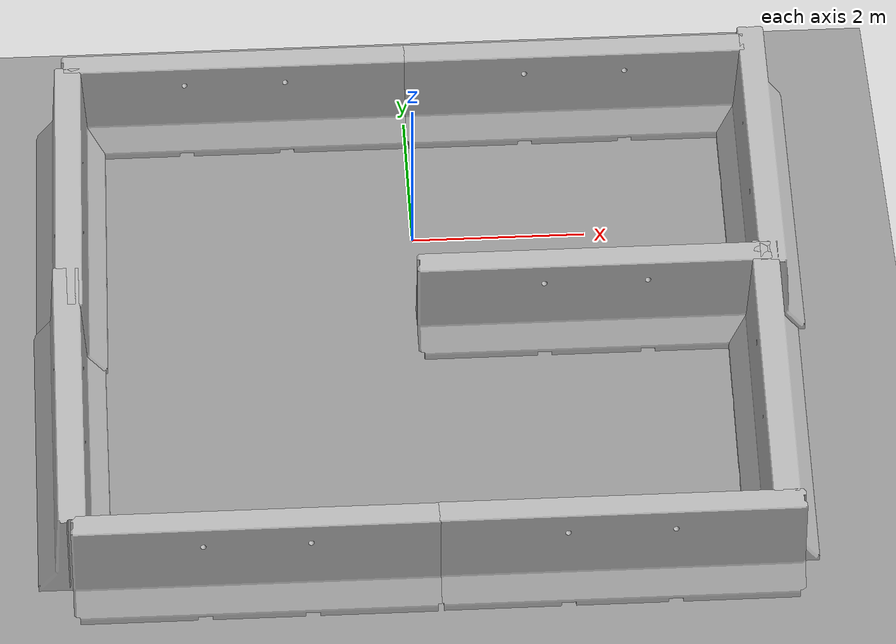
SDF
<sdf version="1.4">
 <world name="default">
  <light name="sun" type="directional">
   <pose>0 0 10 0 -0 0</pose>
   <diffuse>0.8 0.8 0.8 1</diffuse>
   <specular>0.2 0.2 0.2 1</specular>
   <attenuation>
    <range>1000</range>
    <constant>0.9</constant>
    <linear>0.01</linear>
    <quadratic>0.001</quadratic>
   </attenuation>
   <direction>0.5 0.1 -0.9</direction>
  </light>
  <scene><ambient>0.4 0.4 0.4 1</ambient><background>0.7 0.7 0.7 1</background><shadows>1</shadows></scene>
  <physics type="ode">
   <max_step_size>0.001</max_step_size>
   <real_time_factor>1</real_time_factor>
   <real_time_update_rate>1000</real_time_update_rate>
  </physics>
  <model name="jersey_barrier">
   <static>1</static>
   <link name="link">
    <visual name="visual">
     <geometry><mesh><uri>model://jersey_barrier/meshes/jersey_barrier.dae</uri></mesh></geometry>
    </visual>
    <collision name="upright">
     <pose>0 0 0.5715 0 -0 0</pose>
     <geometry><box><size>4.06542 0.3063 1.143</size></box></geometry>
    </collision>
    <collision name="base">
     <pose>0 0 0.032258 0 -0 0</pose>
     <geometry><box><size>4.06542 0.8107 0.064516</size></box></geometry>
    </collision>
    <collision name="base2">
     <pose>0 0 0.1 0 -0 0</pose>
     <geometry><box><size>4.06542 0.65 0.1</size></box></geometry>
    </collision>
    <collision name="base3">
     <pose>0 0 0.2 0 -0 0</pose>
     <geometry><box><size>4.06542 0.5 0.1</size></box></geometry>
    </collision>
    <collision name="left-angle">
     <pose>0 -0.224 0.2401 0.9 -0 0</pose>
     <geometry><box><size>4.06542 0.5 0.064516</size></box></geometry>
    </collision>
    <collision name="right-angle">
     <pose>0 0.224 0.2401 -0.9 0 0</pose>
     <geometry><box><size>4.06542 0.5 0.064516</size></box></geometry>
    </collision>
    <velocity_decay><linear>0</linear><angular>0</angular></velocity_decay>
   </link>
   <pose>-4.01982 -3.47942 0 0 0 -1.56814</pose>
  </model>
  <model name="ground_plane_0">
   <static>1</static>
   <link name="link">
    <collision name="collision">
     <geometry><plane><normal>0 0 1</normal><size>100 100</size></plane></geometry>
     <surface><friction><ode><mu>100</mu><mu2>50</mu2></ode></friction></surface>
    </collision>
    <visual name="visual">
     <cast_shadows>0</cast_shadows>
     <geometry><plane><normal>0 0 1</normal><size>100 100</size></plane></geometry>
     <material>
      <script><uri>file://media/materials/scripts/gazebo.material</uri><name>Gazebo/Grey</name></script>
     </material>
    </visual>
    <velocity_decay><linear>0</linear><angular>0</angular></velocity_decay>
   </link>
   <pose>0.497681 0 0 0 -0 0</pose>
  </model>
  <spherical_coordinates>
   <surface_model>EARTH_WGS84</surface_model>
   <latitude_deg>0</latitude_deg>
   <longitude_deg>0</longitude_deg>
   <elevation>0</elevation>
   <heading_deg>0</heading_deg>
  </spherical_coordinates>
  <model name="jersey_barrier_0">
   <static>1</static>
   <link name="link">
    <visual name="visual">
     <geometry><mesh><uri>model://jersey_barrier/meshes/jersey_barrier.dae</uri></mesh></geometry>
    </visual>
    <collision name="upright">
     <pose>0 0 0.5715 0 -0 0</pose>
     <geometry><box><size>4.06542 0.3063 1.143</size></box></geometry>
    </collision>
    <collision name="base">
     <pose>0 0 0.032258 0 -0 0</pose>
     <geometry><box><size>4.06542 0.8107 0.064516</size></box></geometry>
    </collision>
    <collision name="base2">
     <pose>0 0 0.1 0 -0 0</pose>
     <geometry><box><size>4.06542 0.65 0.1</size></box></geometry>
    </collision>
    <collision name="base3">
     <pose>0 0 0.2 0 -0 0</pose>
     <geometry><box><size>4.06542 0.5 0.1</size></box></geometry>
    </collision>
    <collision name="left-angle">
     <pose>0 -0.224 0.2401 0.9 -0 0</pose>
     <geometry><box><size>4.06542 0.5 0.064516</size></box></geometry>
    </collision>
    <collision name="right-angle">
     <pose>0 0.224 0.2401 -0.9 0 0</pose>
     <geometry><box><size>4.06542 0.5 0.064516</size></box></geometry>
    </collision>
    <velocity_decay><linear>0</linear><angular>0</angular></velocity_decay>
   </link>
   <pose>-3.97808 -0.070198 0 0 -0 1.56062</pose>
  </model>
  <model name="jersey_barrier_1">
   <static>1</static>
   <link name="link">
    <visual name="visual">
     <geometry><mesh><uri>model://jersey_barrier/meshes/jersey_barrier.dae</uri></mesh></geometry>
    </visual>
    <collision name="upright">
     <pose>0 0 0.5715 0 -0 0</pose>
     <geometry><box><size>4.06542 0.3063 1.143</size></box></geometry>
    </collision>
    <collision name="base">
     <pose>0 0 0.032258 0 -0 0</pose>
     <geometry><box><size>4.06542 0.8107 0.064516</size></box></geometry>
    </collision>
    <collision name="base2">
     <pose>0 0 0.1 0 -0 0</pose>
     <geometry><box><size>4.06542 0.65 0.1</size></box></geometry>
    </collision>
    <collision name="base3">
     <pose>0 0 0.2 0 -0 0</pose>
     <geometry><box><size>4.06542 0.5 0.1</size></box></geometry>
    </collision>
    <collision name="left-angle">
     <pose>0 -0.224 0.2401 0.9 -0 0</pose>
     <geometry><box><size>4.06542 0.5 0.064516</size></box></geometry>
    </collision>
    <collision name="right-angle">
     <pose>0 0.224 0.2401 -0.9 0 0</pose>
     <geometry><box><size>4.06542 0.5 0.064516</size></box></geometry>
    </collision>
    <velocity_decay><linear>0</linear><angular>0</angular></velocity_decay>
   </link>
   <pose>-2 2 0 0 -0 0</pose>
  </model>
  <model name="jersey_barrier_2">
   <static>1</static>
   <link name="link">
    <visual name="visual">
     <geometry><mesh><uri>model://jersey_barrier/meshes/jersey_barrier.dae</uri></mesh></geometry>
    </visual>
    <collision name="upright">
     <pose>0 0 0.5715 0 -0 0</pose>
     <geometry><box><size>4.06542 0.3063 1.143</size></box></geometry>
    </collision>
    <collision name="base">
     <pose>0 0 0.032258 0 -0 0</pose>
     <geometry><box><size>4.06542 0.8107 0.064516</size></box></geometry>
    </collision>
    <collision name="base2">
     <pose>0 0 0.1 0 -0 0</pose>
     <geometry><box><size>4.06542 0.65 0.1</size></box></geometry>
    </collision>
    <collision name="base3">
     <pose>0 0 0.2 0 -0 0</pose>
     <geometry><box><size>4.06542 0.5 0.1</size></box></geometry>
    </collision>
    <collision name="left-angle">
     <pose>0 -0.224 0.2401 0.9 -0 0</pose>
     <geometry><box><size>4.06542 0.5 0.064516</size></box></geometry>
    </collision>
    <collision name="right-angle">
     <pose>0 0.224 0.2401 -0.9 0 0</pose>
     <geometry><box><size>4.06542 0.5 0.064516</size></box></geometry>
    </collision>
    <velocity_decay><linear>0</linear><angular>0</angular></velocity_decay>
   </link>
   <pose>-2 -5.5744 0 0 -0 0</pose>
  </model>
  <model name="jersey_barrier_3">
   <static>1</static>
   <link name="link">
    <visual name="visual">
     <geometry><mesh><uri>model://jersey_barrier/meshes/jersey_barrier.dae</uri></mesh></geometry>
    </visual>
    <collision name="upright">
     <pose>0 0 0.5715 0 -0 0</pose>
     <geometry><box><size>4.06542 0.3063 1.143</size></box></geometry>
    </collision>
    <collision name="base">
     <pose>0 0 0.032258 0 -0 0</pose>
     <geometry><box><size>4.06542 0.8107 0.064516</size></box></geometry>
    </collision>
    <collision name="base2">
     <pose>0 0 0.1 0 -0 0</pose>
     <geometry><box><size>4.06542 0.65 0.1</size></box></geometry>
    </collision>
    <collision name="base3">
     <pose>0 0 0.2 0 -0 0</pose>
     <geometry><box><size>4.06542 0.5 0.1</size></box></geometry>
    </collision>
    <collision name="left-angle">
     <pose>0 -0.224 0.2401 0.9 -0 0</pose>
     <geometry><box><size>4.06542 0.5 0.064516</size></box></geometry>
    </collision>
    <collision name="right-angle">
     <pose>0 0.224 0.2401 -0.9 0 0</pose>
     <geometry><box><size>4.06542 0.5 0.064516</size></box></geometry>
    </collision>
    <velocity_decay><linear>0</linear><angular>0</angular></velocity_decay>
   </link>
   <pose>2 -5.56737 0 0 -0 0</pose>
  </model>
  <model name="jersey_barrier_4">
   <static>1</static>
   <link name="link">
    <visual name="visual">
     <geometry><mesh><uri>model://jersey_barrier/meshes/jersey_barrier.dae</uri></mesh></geometry>
    </visual>
    <collision name="upright">
     <pose>0 0 0.5715 0 -0 0</pose>
     <geometry><box><size>4.06542 0.3063 1.143</size></box></geometry>
    </collision>
    <collision name="base">
     <pose>0 0 0.032258 0 -0 0</pose>
     <geometry><box><size>4.06542 0.8107 0.064516</size></box></geometry>
    </collision>
    <collision name="base2">
     <pose>0 0 0.1 0 -0 0</pose>
     <geometry><box><size>4.06542 0.65 0.1</size></box></geometry>
    </collision>
    <collision name="base3">
     <pose>0 0 0.2 0 -0 0</pose>
     <geometry><box><size>4.06542 0.5 0.1</size></box></geometry>
    </collision>
    <collision name="left-angle">
     <pose>0 -0.224 0.2401 0.9 -0 0</pose>
     <geometry><box><size>4.06542 0.5 0.064516</size></box></geometry>
    </collision>
    <collision name="right-angle">
     <pose>0 0.224 0.2401 -0.9 0 0</pose>
     <geometry><box><size>4.06542 0.5 0.064516</size></box></geometry>
    </collision>
    <velocity_decay><linear>0</linear><angular>0</angular></velocity_decay>
   </link>
   <pose>2 2 0 0 -0 0</pose>
  </model>
  <model name="jersey_barrier_5">
   <static>1</static>
   <link name="link">
    <visual name="visual">
     <geometry><mesh><uri>model://jersey_barrier/meshes/jersey_barrier.dae</uri></mesh></geometry>
    </visual>
    <collision name="upright">
     <pose>0 0 0.5715 0 -0 0</pose>
     <geometry><box><size>4.06542 0.3063 1.143</size></box></geometry>
    </collision>
    <collision name="base">
     <pose>0 0 0.032258 0 -0 0</pose>
     <geometry><box><size>4.06542 0.8107 0.064516</size></box></geometry>
    </collision>
    <collision name="base2">
     <pose>0 0 0.1 0 -0 0</pose>
     <geometry><box><size>4.06542 0.65 0.1</size></box></geometry>
    </collision>
    <collision name="base3">
     <pose>0 0 0.2 0 -0 0</pose>
     <geometry><box><size>4.06542 0.5 0.1</size></box></geometry>
    </collision>
    <collision name="left-angle">
     <pose>0 -0.224 0.2401 0.9 -0 0</pose>
     <geometry><box><size>4.06542 0.5 0.064516</size></box></geometry>
    </collision>
    <collision name="right-angle">
     <pose>0 0.224 0.2401 -0.9 0 0</pose>
     <geometry><box><size>4.06542 0.5 0.064516</size></box></geometry>
    </collision>
    <velocity_decay><linear>0</linear><angular>0</angular></velocity_decay>
   </link>
   <pose>2 -1.59389 0 0 -0 0</pose>
  </model>
  <model name="jersey_barrier_6">
   <static>1</static>
   <link name="link">
    <visual name="visual">
     <geometry><mesh><uri>model://jersey_barrier/meshes/jersey_barrier.dae</uri></mesh></geometry>
    </visual>
    <collision name="upright">
     <pose>0 0 0.5715 0 -0 0</pose>
     <geometry><box><size>4.06542 0.3063 1.143</size></box></geometry>
    </collision>
    <collision name="base">
     <pose>0 0 0.032258 0 -0 0</pose>
     <geometry><box><size>4.06542 0.8107 0.064516</size></box></geometry>
    </collision>
    <collision name="base2">
     <pose>0 0 0.1 0 -0 0</pose>
     <geometry><box><size>4.06542 0.65 0.1</size></box></geometry>
    </collision>
    <collision name="base3">
     <pose>0 0 0.2 0 -0 0</pose>
     <geometry><box><size>4.06542 0.5 0.1</size></box></geometry>
    </collision>
    <collision name="left-angle">
     <pose>0 -0.224 0.2401 0.9 -0 0</pose>
     <geometry><box><size>4.06542 0.5 0.064516</size></box></geometry>
    </collision>
    <collision name="right-angle">
     <pose>0 0.224 0.2401 -0.9 0 0</pose>
     <geometry><box><size>4.06542 0.5 0.064516</size></box></geometry>
    </collision>
    <velocity_decay><linear>0</linear><angular>0</angular></velocity_decay>
   </link>
   <pose>3.88452 -3.44605 0 0 0 -1.59947</pose>
  </model>
  <model name="jersey_barrier_7">
   <static>1</static>
   <link name="link">
    <visual name="visual">
     <geometry><mesh><uri>model://jersey_barrier/meshes/jersey_barrier.dae</uri></mesh></geometry>
    </visual>
    <collision name="upright">
     <pose>0 0 0.5715 0 -0 0</pose>
     <geometry><box><size>4.06542 0.3063 1.143</size></box></geometry>
    </collision>
    <collision name="base">
     <pose>0 0 0.032258 0 -0 0</pose>
     <geometry><box><size>4.06542 0.8107 0.064516</size></box></geometry>
    </collision>
    <collision name="base2">
     <pose>0 0 0.1 0 -0 0</pose>
     <geometry><box><size>4.06542 0.65 0.1</size></box></geometry>
    </collision>
    <collision name="base3">
     <pose>0 0 0.2 0 -0 0</pose>
     <geometry><box><size>4.06542 0.5 0.1</size></box></geometry>
    </collision>
    <collision name="left-angle">
     <pose>0 -0.224 0.2401 0.9 -0 0</pose>
     <geometry><box><size>4.06542 0.5 0.064516</size></box></geometry>
    </collision>
    <collision name="right-angle">
     <pose>0 0.224 0.2401 -0.9 0 0</pose>
     <geometry><box><size>4.06542 0.5 0.064516</size></box></geometry>
    </collision>
    <velocity_decay><linear>0</linear><angular>0</angular></velocity_decay>
   </link>
   <pose>4.06175 0.24882 0 0 -0 1.54903</pose>
  </model>
 </world>
</sdf>
